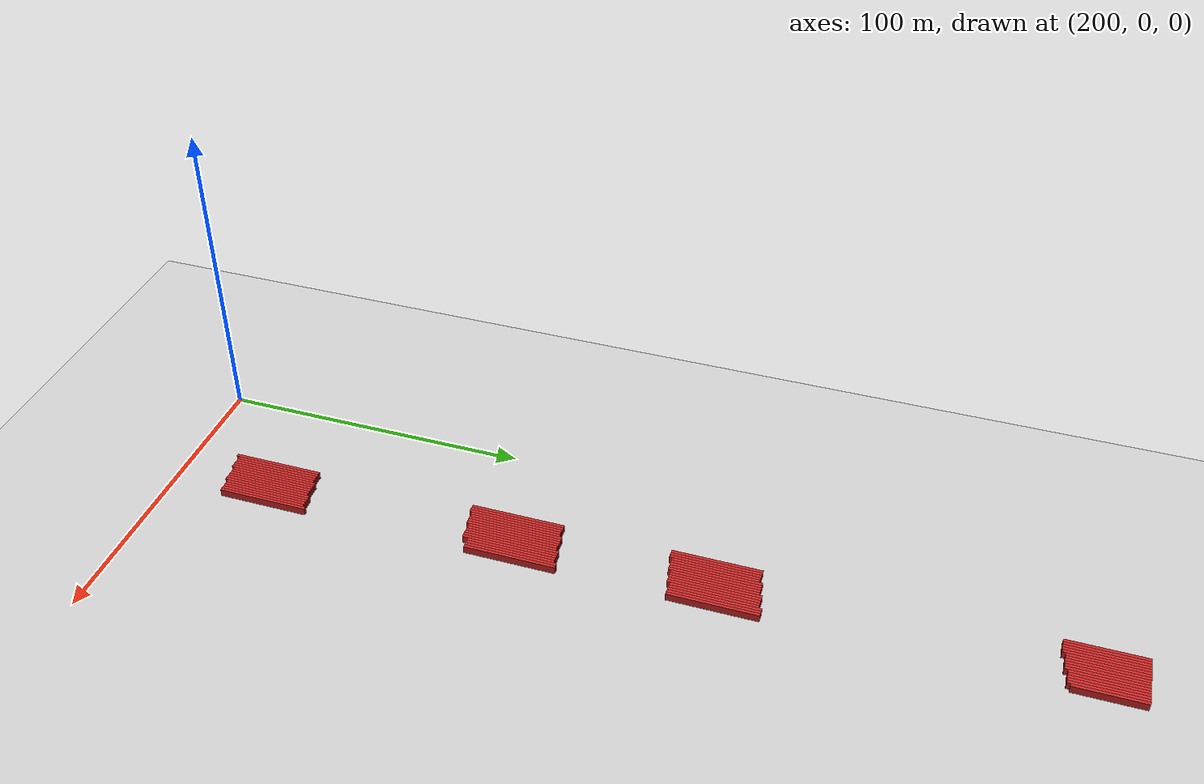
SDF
<sdf version="1.4">
 <world name="1_wall">
  <model name="ground_plane">
   <static>1</static>
   <link name="link">
    <collision name="collision">
     <geometry><plane><normal>0 0 1</normal><size>1000 1000</size></plane></geometry>
     <surface><friction><ode><mu>100</mu><mu2>50</mu2></ode></friction></surface>
    </collision>
    <visual name="visual">
     <cast_shadows>0</cast_shadows>
     <geometry><plane><normal>0 0 1</normal><size>10000 10000</size></plane></geometry>
     <material>
      <script><uri>file://media/materials/scripts/gazebo.material</uri><name>Gazebo/Grey</name></script>
     </material>
    </visual>
    <velocity_decay><linear>0</linear><angular>0</angular></velocity_decay>
   </link>
  </model>
  <model name="Wall_711">
   <static>1</static>
   <link name="Wall_711">
    <collision name="Wall_Collision_711">
     <geometry><box><size>30.0 1.0 2.5</size></box></geometry>
     <pose>0 0 1.25 0 -0 0</pose>
    </collision>
    <visual name="Wall_Visual_711">
     <pose>0 0 1.25 0 -0 0</pose>
     <geometry><box><size>30.0 1.0 2.5</size></box></geometry>
     <material>
      <script><uri>file://media/materials/scripts/gazebo.material</uri><name>Gazebo/Red</name></script>
     </material>
    </visual>
    <velocity_decay><linear>0</linear><angular>0</angular></velocity_decay>
    <pose>227.5 111.0 0 0 0 1.5707963267948966</pose>
   </link>
  </model>
  <model name="Wall_712">
   <static>1</static>
   <link name="Wall_712">
    <collision name="Wall_Collision_712">
     <geometry><box><size>28.0 1.0 2.5</size></box></geometry>
     <pose>0 0 1.25 0 -0 0</pose>
    </collision>
    <visual name="Wall_Visual_712">
     <pose>0 0 1.25 0 -0 0</pose>
     <geometry><box><size>28.0 1.0 2.5</size></box></geometry>
     <material>
      <script><uri>file://media/materials/scripts/gazebo.material</uri><name>Gazebo/Red</name></script>
     </material>
    </visual>
    <velocity_decay><linear>0</linear><angular>0</angular></velocity_decay>
    <pose>227.5 174.0 0 0 0 1.5707963267948966</pose>
   </link>
  </model>
  <model name="Wall_713">
   <static>1</static>
   <link name="Wall_713">
    <collision name="Wall_Collision_713">
     <geometry><box><size>24.0 1.0 2.5</size></box></geometry>
     <pose>0 0 1.25 0 -0 0</pose>
    </collision>
    <visual name="Wall_Visual_713">
     <pose>0 0 1.25 0 -0 0</pose>
     <geometry><box><size>24.0 1.0 2.5</size></box></geometry>
     <material>
      <script><uri>file://media/materials/scripts/gazebo.material</uri><name>Gazebo/Red</name></script>
     </material>
    </visual>
    <velocity_decay><linear>0</linear><angular>0</angular></velocity_decay>
    <pose>227.5 286.0 0 0 0 1.5707963267948966</pose>
   </link>
  </model>
  <model name="Wall_714">
   <static>1</static>
   <link name="Wall_714">
    <collision name="Wall_Collision_714">
     <geometry><box><size>29.0 1.0 2.5</size></box></geometry>
     <pose>0 0 1.25 0 -0 0</pose>
    </collision>
    <visual name="Wall_Visual_714">
     <pose>0 0 1.25 0 -0 0</pose>
     <geometry><box><size>29.0 1.0 2.5</size></box></geometry>
     <material>
      <script><uri>file://media/materials/scripts/gazebo.material</uri><name>Gazebo/Red</name></script>
     </material>
    </visual>
    <velocity_decay><linear>0</linear><angular>0</angular></velocity_decay>
    <pose>228.5 29.5 0 0 0 1.5707963267948966</pose>
   </link>
  </model>
  <model name="Wall_715">
   <static>1</static>
   <link name="Wall_715">
    <collision name="Wall_Collision_715">
     <geometry><box><size>30.0 1.0 2.5</size></box></geometry>
     <pose>0 0 1.25 0 -0 0</pose>
    </collision>
    <visual name="Wall_Visual_715">
     <pose>0 0 1.25 0 -0 0</pose>
     <geometry><box><size>30.0 1.0 2.5</size></box></geometry>
     <material>
      <script><uri>file://media/materials/scripts/gazebo.material</uri><name>Gazebo/Red</name></script>
     </material>
    </visual>
    <velocity_decay><linear>0</linear><angular>0</angular></velocity_decay>
    <pose>228.5 111.0 0 0 0 1.5707963267948966</pose>
   </link>
  </model>
  <model name="Wall_716">
   <static>1</static>
   <link name="Wall_716">
    <collision name="Wall_Collision_716">
     <geometry><box><size>28.0 1.0 2.5</size></box></geometry>
     <pose>0 0 1.25 0 -0 0</pose>
    </collision>
    <visual name="Wall_Visual_716">
     <pose>0 0 1.25 0 -0 0</pose>
     <geometry><box><size>28.0 1.0 2.5</size></box></geometry>
     <material>
      <script><uri>file://media/materials/scripts/gazebo.material</uri><name>Gazebo/Red</name></script>
     </material>
    </visual>
    <velocity_decay><linear>0</linear><angular>0</angular></velocity_decay>
    <pose>228.5 174.0 0 0 0 1.5707963267948966</pose>
   </link>
  </model>
  <model name="Wall_717">
   <static>1</static>
   <link name="Wall_717">
    <collision name="Wall_Collision_717">
     <geometry><box><size>24.0 1.0 2.5</size></box></geometry>
     <pose>0 0 1.25 0 -0 0</pose>
    </collision>
    <visual name="Wall_Visual_717">
     <pose>0 0 1.25 0 -0 0</pose>
     <geometry><box><size>24.0 1.0 2.5</size></box></geometry>
     <material>
      <script><uri>file://media/materials/scripts/gazebo.material</uri><name>Gazebo/Red</name></script>
     </material>
    </visual>
    <velocity_decay><linear>0</linear><angular>0</angular></velocity_decay>
    <pose>228.5 286.0 0 0 0 1.5707963267948966</pose>
   </link>
  </model>
  <model name="Wall_718">
   <static>1</static>
   <link name="Wall_718">
    <collision name="Wall_Collision_718">
     <geometry><box><size>28.0 1.0 2.5</size></box></geometry>
     <pose>0 0 1.25 0 -0 0</pose>
    </collision>
    <visual name="Wall_Visual_718">
     <pose>0 0 1.25 0 -0 0</pose>
     <geometry><box><size>28.0 1.0 2.5</size></box></geometry>
     <material>
      <script><uri>file://media/materials/scripts/gazebo.material</uri><name>Gazebo/Red</name></script>
     </material>
    </visual>
    <velocity_decay><linear>0</linear><angular>0</angular></velocity_decay>
    <pose>229.5 30.0 0 0 0 1.5707963267948966</pose>
   </link>
  </model>
  <model name="Wall_719">
   <static>1</static>
   <link name="Wall_719">
    <collision name="Wall_Collision_719">
     <geometry><box><size>30.0 1.0 2.5</size></box></geometry>
     <pose>0 0 1.25 0 -0 0</pose>
    </collision>
    <visual name="Wall_Visual_719">
     <pose>0 0 1.25 0 -0 0</pose>
     <geometry><box><size>30.0 1.0 2.5</size></box></geometry>
     <material>
      <script><uri>file://media/materials/scripts/gazebo.material</uri><name>Gazebo/Red</name></script>
     </material>
    </visual>
    <velocity_decay><linear>0</linear><angular>0</angular></velocity_decay>
    <pose>229.5 111.0 0 0 0 1.5707963267948966</pose>
   </link>
  </model>
  <model name="Wall_720">
   <static>1</static>
   <link name="Wall_720">
    <collision name="Wall_Collision_720">
     <geometry><box><size>28.0 1.0 2.5</size></box></geometry>
     <pose>0 0 1.25 0 -0 0</pose>
    </collision>
    <visual name="Wall_Visual_720">
     <pose>0 0 1.25 0 -0 0</pose>
     <geometry><box><size>28.0 1.0 2.5</size></box></geometry>
     <material>
      <script><uri>file://media/materials/scripts/gazebo.material</uri><name>Gazebo/Red</name></script>
     </material>
    </visual>
    <velocity_decay><linear>0</linear><angular>0</angular></velocity_decay>
    <pose>229.5 174.0 0 0 0 1.5707963267948966</pose>
   </link>
  </model>
  <model name="Wall_721">
   <static>1</static>
   <link name="Wall_721">
    <collision name="Wall_Collision_721">
     <geometry><box><size>24.0 1.0 2.5</size></box></geometry>
     <pose>0 0 1.25 0 -0 0</pose>
    </collision>
    <visual name="Wall_Visual_721">
     <pose>0 0 1.25 0 -0 0</pose>
     <geometry><box><size>24.0 1.0 2.5</size></box></geometry>
     <material>
      <script><uri>file://media/materials/scripts/gazebo.material</uri><name>Gazebo/Red</name></script>
     </material>
    </visual>
    <velocity_decay><linear>0</linear><angular>0</angular></velocity_decay>
    <pose>229.5 286.0 0 0 0 1.5707963267948966</pose>
   </link>
  </model>
  <model name="Wall_722">
   <static>1</static>
   <link name="Wall_722">
    <collision name="Wall_Collision_722">
     <geometry><box><size>28.0 1.0 2.5</size></box></geometry>
     <pose>0 0 1.25 0 -0 0</pose>
    </collision>
    <visual name="Wall_Visual_722">
     <pose>0 0 1.25 0 -0 0</pose>
     <geometry><box><size>28.0 1.0 2.5</size></box></geometry>
     <material>
      <script><uri>file://media/materials/scripts/gazebo.material</uri><name>Gazebo/Red</name></script>
     </material>
    </visual>
    <velocity_decay><linear>0</linear><angular>0</angular></velocity_decay>
    <pose>230.5 30.0 0 0 0 1.5707963267948966</pose>
   </link>
  </model>
  <model name="Wall_723">
   <static>1</static>
   <link name="Wall_723">
    <collision name="Wall_Collision_723">
     <geometry><box><size>29.0 1.0 2.5</size></box></geometry>
     <pose>0 0 1.25 0 -0 0</pose>
    </collision>
    <visual name="Wall_Visual_723">
     <pose>0 0 1.25 0 -0 0</pose>
     <geometry><box><size>29.0 1.0 2.5</size></box></geometry>
     <material>
      <script><uri>file://media/materials/scripts/gazebo.material</uri><name>Gazebo/Red</name></script>
     </material>
    </visual>
    <velocity_decay><linear>0</linear><angular>0</angular></velocity_decay>
    <pose>230.5 111.5 0 0 0 1.5707963267948966</pose>
   </link>
  </model>
  <model name="Wall_724">
   <static>1</static>
   <link name="Wall_724">
    <collision name="Wall_Collision_724">
     <geometry><box><size>27.0 1.0 2.5</size></box></geometry>
     <pose>0 0 1.25 0 -0 0</pose>
    </collision>
    <visual name="Wall_Visual_724">
     <pose>0 0 1.25 0 -0 0</pose>
     <geometry><box><size>27.0 1.0 2.5</size></box></geometry>
     <material>
      <script><uri>file://media/materials/scripts/gazebo.material</uri><name>Gazebo/Red</name></script>
     </material>
    </visual>
    <velocity_decay><linear>0</linear><angular>0</angular></velocity_decay>
    <pose>230.5 174.5 0 0 0 1.5707963267948966</pose>
   </link>
  </model>
  <model name="Wall_725">
   <static>1</static>
   <link name="Wall_725">
    <collision name="Wall_Collision_725">
     <geometry><box><size>24.0 1.0 2.5</size></box></geometry>
     <pose>0 0 1.25 0 -0 0</pose>
    </collision>
    <visual name="Wall_Visual_725">
     <pose>0 0 1.25 0 -0 0</pose>
     <geometry><box><size>24.0 1.0 2.5</size></box></geometry>
     <material>
      <script><uri>file://media/materials/scripts/gazebo.material</uri><name>Gazebo/Red</name></script>
     </material>
    </visual>
    <velocity_decay><linear>0</linear><angular>0</angular></velocity_decay>
    <pose>230.5 286.0 0 0 0 1.5707963267948966</pose>
   </link>
  </model>
  <model name="Wall_726">
   <static>1</static>
   <link name="Wall_726">
    <collision name="Wall_Collision_726">
     <geometry><box><size>28.0 1.0 2.5</size></box></geometry>
     <pose>0 0 1.25 0 -0 0</pose>
    </collision>
    <visual name="Wall_Visual_726">
     <pose>0 0 1.25 0 -0 0</pose>
     <geometry><box><size>28.0 1.0 2.5</size></box></geometry>
     <material>
      <script><uri>file://media/materials/scripts/gazebo.material</uri><name>Gazebo/Red</name></script>
     </material>
    </visual>
    <velocity_decay><linear>0</linear><angular>0</angular></velocity_decay>
    <pose>231.5 30.0 0 0 0 1.5707963267948966</pose>
   </link>
  </model>
  <model name="Wall_727">
   <static>1</static>
   <link name="Wall_727">
    <collision name="Wall_Collision_727">
     <geometry><box><size>29.0 1.0 2.5</size></box></geometry>
     <pose>0 0 1.25 0 -0 0</pose>
    </collision>
    <visual name="Wall_Visual_727">
     <pose>0 0 1.25 0 -0 0</pose>
     <geometry><box><size>29.0 1.0 2.5</size></box></geometry>
     <material>
      <script><uri>file://media/materials/scripts/gazebo.material</uri><name>Gazebo/Red</name></script>
     </material>
    </visual>
    <velocity_decay><linear>0</linear><angular>0</angular></velocity_decay>
    <pose>231.5 111.5 0 0 0 1.5707963267948966</pose>
   </link>
  </model>
  <model name="Wall_728">
   <static>1</static>
   <link name="Wall_728">
    <collision name="Wall_Collision_728">
     <geometry><box><size>27.0 1.0 2.5</size></box></geometry>
     <pose>0 0 1.25 0 -0 0</pose>
    </collision>
    <visual name="Wall_Visual_728">
     <pose>0 0 1.25 0 -0 0</pose>
     <geometry><box><size>27.0 1.0 2.5</size></box></geometry>
     <material>
      <script><uri>file://media/materials/scripts/gazebo.material</uri><name>Gazebo/Red</name></script>
     </material>
    </visual>
    <velocity_decay><linear>0</linear><angular>0</angular></velocity_decay>
    <pose>231.5 174.5 0 0 0 1.5707963267948966</pose>
   </link>
  </model>
  <model name="Wall_729">
   <static>1</static>
   <link name="Wall_729">
    <collision name="Wall_Collision_729">
     <geometry><box><size>24.0 1.0 2.5</size></box></geometry>
     <pose>0 0 1.25 0 -0 0</pose>
    </collision>
    <visual name="Wall_Visual_729">
     <pose>0 0 1.25 0 -0 0</pose>
     <geometry><box><size>24.0 1.0 2.5</size></box></geometry>
     <material>
      <script><uri>file://media/materials/scripts/gazebo.material</uri><name>Gazebo/Red</name></script>
     </material>
    </visual>
    <velocity_decay><linear>0</linear><angular>0</angular></velocity_decay>
    <pose>231.5 286.0 0 0 0 1.5707963267948966</pose>
   </link>
  </model>
  <model name="Wall_730">
   <static>1</static>
   <link name="Wall_730">
    <collision name="Wall_Collision_730">
     <geometry><box><size>28.0 1.0 2.5</size></box></geometry>
     <pose>0 0 1.25 0 -0 0</pose>
    </collision>
    <visual name="Wall_Visual_730">
     <pose>0 0 1.25 0 -0 0</pose>
     <geometry><box><size>28.0 1.0 2.5</size></box></geometry>
     <material>
      <script><uri>file://media/materials/scripts/gazebo.material</uri><name>Gazebo/Red</name></script>
     </material>
    </visual>
    <velocity_decay><linear>0</linear><angular>0</angular></velocity_decay>
    <pose>232.5 30.0 0 0 0 1.5707963267948966</pose>
   </link>
  </model>
  <model name="Wall_731">
   <static>1</static>
   <link name="Wall_731">
    <collision name="Wall_Collision_731">
     <geometry><box><size>30.0 1.0 2.5</size></box></geometry>
     <pose>0 0 1.25 0 -0 0</pose>
    </collision>
    <visual name="Wall_Visual_731">
     <pose>0 0 1.25 0 -0 0</pose>
     <geometry><box><size>30.0 1.0 2.5</size></box></geometry>
     <material>
      <script><uri>file://media/materials/scripts/gazebo.material</uri><name>Gazebo/Red</name></script>
     </material>
    </visual>
    <velocity_decay><linear>0</linear><angular>0</angular></velocity_decay>
    <pose>232.5 112.0 0 0 0 1.5707963267948966</pose>
   </link>
  </model>
  <model name="Wall_732">
   <static>1</static>
   <link name="Wall_732">
    <collision name="Wall_Collision_732">
     <geometry><box><size>28.0 1.0 2.5</size></box></geometry>
     <pose>0 0 1.25 0 -0 0</pose>
    </collision>
    <visual name="Wall_Visual_732">
     <pose>0 0 1.25 0 -0 0</pose>
     <geometry><box><size>28.0 1.0 2.5</size></box></geometry>
     <material>
      <script><uri>file://media/materials/scripts/gazebo.material</uri><name>Gazebo/Red</name></script>
     </material>
    </visual>
    <velocity_decay><linear>0</linear><angular>0</angular></velocity_decay>
    <pose>232.5 175.0 0 0 0 1.5707963267948966</pose>
   </link>
  </model>
  <model name="Wall_733">
   <static>1</static>
   <link name="Wall_733">
    <collision name="Wall_Collision_733">
     <geometry><box><size>23.0 1.0 2.5</size></box></geometry>
     <pose>0 0 1.25 0 -0 0</pose>
    </collision>
    <visual name="Wall_Visual_733">
     <pose>0 0 1.25 0 -0 0</pose>
     <geometry><box><size>23.0 1.0 2.5</size></box></geometry>
     <material>
      <script><uri>file://media/materials/scripts/gazebo.material</uri><name>Gazebo/Red</name></script>
     </material>
    </visual>
    <velocity_decay><linear>0</linear><angular>0</angular></velocity_decay>
    <pose>232.5 286.5 0 0 0 1.5707963267948966</pose>
   </link>
  </model>
  <model name="Wall_734">
   <static>1</static>
   <link name="Wall_734">
    <collision name="Wall_Collision_734">
     <geometry><box><size>29.0 1.0 2.5</size></box></geometry>
     <pose>0 0 1.25 0 -0 0</pose>
    </collision>
    <visual name="Wall_Visual_734">
     <pose>0 0 1.25 0 -0 0</pose>
     <geometry><box><size>29.0 1.0 2.5</size></box></geometry>
     <material>
      <script><uri>file://media/materials/scripts/gazebo.material</uri><name>Gazebo/Red</name></script>
     </material>
    </visual>
    <velocity_decay><linear>0</linear><angular>0</angular></velocity_decay>
    <pose>233.5 30.5 0 0 0 1.5707963267948966</pose>
   </link>
  </model>
  <model name="Wall_735">
   <static>1</static>
   <link name="Wall_735">
    <collision name="Wall_Collision_735">
     <geometry><box><size>30.0 1.0 2.5</size></box></geometry>
     <pose>0 0 1.25 0 -0 0</pose>
    </collision>
    <visual name="Wall_Visual_735">
     <pose>0 0 1.25 0 -0 0</pose>
     <geometry><box><size>30.0 1.0 2.5</size></box></geometry>
     <material>
      <script><uri>file://media/materials/scripts/gazebo.material</uri><name>Gazebo/Red</name></script>
     </material>
    </visual>
    <velocity_decay><linear>0</linear><angular>0</angular></velocity_decay>
    <pose>233.5 112.0 0 0 0 1.5707963267948966</pose>
   </link>
  </model>
  <model name="Wall_736">
   <static>1</static>
   <link name="Wall_736">
    <collision name="Wall_Collision_736">
     <geometry><box><size>28.0 1.0 2.5</size></box></geometry>
     <pose>0 0 1.25 0 -0 0</pose>
    </collision>
    <visual name="Wall_Visual_736">
     <pose>0 0 1.25 0 -0 0</pose>
     <geometry><box><size>28.0 1.0 2.5</size></box></geometry>
     <material>
      <script><uri>file://media/materials/scripts/gazebo.material</uri><name>Gazebo/Red</name></script>
     </material>
    </visual>
    <velocity_decay><linear>0</linear><angular>0</angular></velocity_decay>
    <pose>233.5 175.0 0 0 0 1.5707963267948966</pose>
   </link>
  </model>
  <model name="Wall_737">
   <static>1</static>
   <link name="Wall_737">
    <collision name="Wall_Collision_737">
     <geometry><box><size>23.0 1.0 2.5</size></box></geometry>
     <pose>0 0 1.25 0 -0 0</pose>
    </collision>
    <visual name="Wall_Visual_737">
     <pose>0 0 1.25 0 -0 0</pose>
     <geometry><box><size>23.0 1.0 2.5</size></box></geometry>
     <material>
      <script><uri>file://media/materials/scripts/gazebo.material</uri><name>Gazebo/Red</name></script>
     </material>
    </visual>
    <velocity_decay><linear>0</linear><angular>0</angular></velocity_decay>
    <pose>233.5 286.5 0 0 0 1.5707963267948966</pose>
   </link>
  </model>
  <model name="Wall_738">
   <static>1</static>
   <link name="Wall_738">
    <collision name="Wall_Collision_738">
     <geometry><box><size>28.0 1.0 2.5</size></box></geometry>
     <pose>0 0 1.25 0 -0 0</pose>
    </collision>
    <visual name="Wall_Visual_738">
     <pose>0 0 1.25 0 -0 0</pose>
     <geometry><box><size>28.0 1.0 2.5</size></box></geometry>
     <material>
      <script><uri>file://media/materials/scripts/gazebo.material</uri><name>Gazebo/Red</name></script>
     </material>
    </visual>
    <velocity_decay><linear>0</linear><angular>0</angular></velocity_decay>
    <pose>234.5 31.0 0 0 0 1.5707963267948966</pose>
   </link>
  </model>
  <model name="Wall_739">
   <static>1</static>
   <link name="Wall_739">
    <collision name="Wall_Collision_739">
     <geometry><box><size>30.0 1.0 2.5</size></box></geometry>
     <pose>0 0 1.25 0 -0 0</pose>
    </collision>
    <visual name="Wall_Visual_739">
     <pose>0 0 1.25 0 -0 0</pose>
     <geometry><box><size>30.0 1.0 2.5</size></box></geometry>
     <material>
      <script><uri>file://media/materials/scripts/gazebo.material</uri><name>Gazebo/Red</name></script>
     </material>
    </visual>
    <velocity_decay><linear>0</linear><angular>0</angular></velocity_decay>
    <pose>234.5 112.0 0 0 0 1.5707963267948966</pose>
   </link>
  </model>
  <model name="Wall_740">
   <static>1</static>
   <link name="Wall_740">
    <collision name="Wall_Collision_740">
     <geometry><box><size>28.0 1.0 2.5</size></box></geometry>
     <pose>0 0 1.25 0 -0 0</pose>
    </collision>
    <visual name="Wall_Visual_740">
     <pose>0 0 1.25 0 -0 0</pose>
     <geometry><box><size>28.0 1.0 2.5</size></box></geometry>
     <material>
      <script><uri>file://media/materials/scripts/gazebo.material</uri><name>Gazebo/Red</name></script>
     </material>
    </visual>
    <velocity_decay><linear>0</linear><angular>0</angular></velocity_decay>
    <pose>234.5 175.0 0 0 0 1.5707963267948966</pose>
   </link>
  </model>
  <model name="Wall_741">
   <static>1</static>
   <link name="Wall_741">
    <collision name="Wall_Collision_741">
     <geometry><box><size>23.0 1.0 2.5</size></box></geometry>
     <pose>0 0 1.25 0 -0 0</pose>
    </collision>
    <visual name="Wall_Visual_741">
     <pose>0 0 1.25 0 -0 0</pose>
     <geometry><box><size>23.0 1.0 2.5</size></box></geometry>
     <material>
      <script><uri>file://media/materials/scripts/gazebo.material</uri><name>Gazebo/Red</name></script>
     </material>
    </visual>
    <velocity_decay><linear>0</linear><angular>0</angular></velocity_decay>
    <pose>234.5 286.5 0 0 0 1.5707963267948966</pose>
   </link>
  </model>
  <model name="Wall_742">
   <static>1</static>
   <link name="Wall_742">
    <collision name="Wall_Collision_742">
     <geometry><box><size>28.0 1.0 2.5</size></box></geometry>
     <pose>0 0 1.25 0 -0 0</pose>
    </collision>
    <visual name="Wall_Visual_742">
     <pose>0 0 1.25 0 -0 0</pose>
     <geometry><box><size>28.0 1.0 2.5</size></box></geometry>
     <material>
      <script><uri>file://media/materials/scripts/gazebo.material</uri><name>Gazebo/Red</name></script>
     </material>
    </visual>
    <velocity_decay><linear>0</linear><angular>0</angular></velocity_decay>
    <pose>235.5 31.0 0 0 0 1.5707963267948966</pose>
   </link>
  </model>
  <model name="Wall_743">
   <static>1</static>
   <link name="Wall_743">
    <collision name="Wall_Collision_743">
     <geometry><box><size>29.0 1.0 2.5</size></box></geometry>
     <pose>0 0 1.25 0 -0 0</pose>
    </collision>
    <visual name="Wall_Visual_743">
     <pose>0 0 1.25 0 -0 0</pose>
     <geometry><box><size>29.0 1.0 2.5</size></box></geometry>
     <material>
      <script><uri>file://media/materials/scripts/gazebo.material</uri><name>Gazebo/Red</name></script>
     </material>
    </visual>
    <velocity_decay><linear>0</linear><angular>0</angular></velocity_decay>
    <pose>235.5 112.5 0 0 0 1.5707963267948966</pose>
   </link>
  </model>
  <model name="Wall_744">
   <static>1</static>
   <link name="Wall_744">
    <collision name="Wall_Collision_744">
     <geometry><box><size>27.0 1.0 2.5</size></box></geometry>
     <pose>0 0 1.25 0 -0 0</pose>
    </collision>
    <visual name="Wall_Visual_744">
     <pose>0 0 1.25 0 -0 0</pose>
     <geometry><box><size>27.0 1.0 2.5</size></box></geometry>
     <material>
      <script><uri>file://media/materials/scripts/gazebo.material</uri><name>Gazebo/Red</name></script>
     </material>
    </visual>
    <velocity_decay><linear>0</linear><angular>0</angular></velocity_decay>
    <pose>235.5 175.5 0 0 0 1.5707963267948966</pose>
   </link>
  </model>
  <model name="Wall_745">
   <static>1</static>
   <link name="Wall_745">
    <collision name="Wall_Collision_745">
     <geometry><box><size>23.0 1.0 2.5</size></box></geometry>
     <pose>0 0 1.25 0 -0 0</pose>
    </collision>
    <visual name="Wall_Visual_745">
     <pose>0 0 1.25 0 -0 0</pose>
     <geometry><box><size>23.0 1.0 2.5</size></box></geometry>
     <material>
      <script><uri>file://media/materials/scripts/gazebo.material</uri><name>Gazebo/Red</name></script>
     </material>
    </visual>
    <velocity_decay><linear>0</linear><angular>0</angular></velocity_decay>
    <pose>235.5 286.5 0 0 0 1.5707963267948966</pose>
   </link>
  </model>
  <model name="Wall_746">
   <static>1</static>
   <link name="Wall_746">
    <collision name="Wall_Collision_746">
     <geometry><box><size>28.0 1.0 2.5</size></box></geometry>
     <pose>0 0 1.25 0 -0 0</pose>
    </collision>
    <visual name="Wall_Visual_746">
     <pose>0 0 1.25 0 -0 0</pose>
     <geometry><box><size>28.0 1.0 2.5</size></box></geometry>
     <material>
      <script><uri>file://media/materials/scripts/gazebo.material</uri><name>Gazebo/Red</name></script>
     </material>
    </visual>
    <velocity_decay><linear>0</linear><angular>0</angular></velocity_decay>
    <pose>236.5 31.0 0 0 0 1.5707963267948966</pose>
   </link>
  </model>
  <model name="Wall_747">
   <static>1</static>
   <link name="Wall_747">
    <collision name="Wall_Collision_747">
     <geometry><box><size>29.0 1.0 2.5</size></box></geometry>
     <pose>0 0 1.25 0 -0 0</pose>
    </collision>
    <visual name="Wall_Visual_747">
     <pose>0 0 1.25 0 -0 0</pose>
     <geometry><box><size>29.0 1.0 2.5</size></box></geometry>
     <material>
      <script><uri>file://media/materials/scripts/gazebo.material</uri><name>Gazebo/Red</name></script>
     </material>
    </visual>
    <velocity_decay><linear>0</linear><angular>0</angular></velocity_decay>
    <pose>236.5 112.5 0 0 0 1.5707963267948966</pose>
   </link>
  </model>
  <model name="Wall_748">
   <static>1</static>
   <link name="Wall_748">
    <collision name="Wall_Collision_748">
     <geometry><box><size>27.0 1.0 2.5</size></box></geometry>
     <pose>0 0 1.25 0 -0 0</pose>
    </collision>
    <visual name="Wall_Visual_748">
     <pose>0 0 1.25 0 -0 0</pose>
     <geometry><box><size>27.0 1.0 2.5</size></box></geometry>
     <material>
      <script><uri>file://media/materials/scripts/gazebo.material</uri><name>Gazebo/Red</name></script>
     </material>
    </visual>
    <velocity_decay><linear>0</linear><angular>0</angular></velocity_decay>
    <pose>236.5 175.5 0 0 0 1.5707963267948966</pose>
   </link>
  </model>
  <model name="Wall_749">
   <static>1</static>
   <link name="Wall_749">
    <collision name="Wall_Collision_749">
     <geometry><box><size>23.0 1.0 2.5</size></box></geometry>
     <pose>0 0 1.25 0 -0 0</pose>
    </collision>
    <visual name="Wall_Visual_749">
     <pose>0 0 1.25 0 -0 0</pose>
     <geometry><box><size>23.0 1.0 2.5</size></box></geometry>
     <material>
      <script><uri>file://media/materials/scripts/gazebo.material</uri><name>Gazebo/Red</name></script>
     </material>
    </visual>
    <velocity_decay><linear>0</linear><angular>0</angular></velocity_decay>
    <pose>236.5 286.5 0 0 0 1.5707963267948966</pose>
   </link>
  </model>
  <model name="Wall_750">
   <static>1</static>
   <link name="Wall_750">
    <collision name="Wall_Collision_750">
     <geometry><box><size>28.0 1.0 2.5</size></box></geometry>
     <pose>0 0 1.25 0 -0 0</pose>
    </collision>
    <visual name="Wall_Visual_750">
     <pose>0 0 1.25 0 -0 0</pose>
     <geometry><box><size>28.0 1.0 2.5</size></box></geometry>
     <material>
      <script><uri>file://media/materials/scripts/gazebo.material</uri><name>Gazebo/Red</name></script>
     </material>
    </visual>
    <velocity_decay><linear>0</linear><angular>0</angular></velocity_decay>
    <pose>237.5 31.0 0 0 0 1.5707963267948966</pose>
   </link>
  </model>
  <model name="Wall_751">
   <static>1</static>
   <link name="Wall_751">
    <collision name="Wall_Collision_751">
     <geometry><box><size>29.0 1.0 2.5</size></box></geometry>
     <pose>0 0 1.25 0 -0 0</pose>
    </collision>
    <visual name="Wall_Visual_751">
     <pose>0 0 1.25 0 -0 0</pose>
     <geometry><box><size>29.0 1.0 2.5</size></box></geometry>
     <material>
      <script><uri>file://media/materials/scripts/gazebo.material</uri><name>Gazebo/Red</name></script>
     </material>
    </visual>
    <velocity_decay><linear>0</linear><angular>0</angular></velocity_decay>
    <pose>237.5 112.5 0 0 0 1.5707963267948966</pose>
   </link>
  </model>
  <model name="Wall_752">
   <static>1</static>
   <link name="Wall_752">
    <collision name="Wall_Collision_752">
     <geometry><box><size>28.0 1.0 2.5</size></box></geometry>
     <pose>0 0 1.25 0 -0 0</pose>
    </collision>
    <visual name="Wall_Visual_752">
     <pose>0 0 1.25 0 -0 0</pose>
     <geometry><box><size>28.0 1.0 2.5</size></box></geometry>
     <material>
      <script><uri>file://media/materials/scripts/gazebo.material</uri><name>Gazebo/Red</name></script>
     </material>
    </visual>
    <velocity_decay><linear>0</linear><angular>0</angular></velocity_decay>
    <pose>237.5 176.0 0 0 0 1.5707963267948966</pose>
   </link>
  </model>
  <model name="Wall_753">
   <static>1</static>
   <link name="Wall_753">
    <collision name="Wall_Collision_753">
     <geometry><box><size>23.0 1.0 2.5</size></box></geometry>
     <pose>0 0 1.25 0 -0 0</pose>
    </collision>
    <visual name="Wall_Visual_753">
     <pose>0 0 1.25 0 -0 0</pose>
     <geometry><box><size>23.0 1.0 2.5</size></box></geometry>
     <material>
      <script><uri>file://media/materials/scripts/gazebo.material</uri><name>Gazebo/Red</name></script>
     </material>
    </visual>
    <velocity_decay><linear>0</linear><angular>0</angular></velocity_decay>
    <pose>237.5 286.5 0 0 0 1.5707963267948966</pose>
   </link>
  </model>
  <model name="Wall_754">
   <static>1</static>
   <link name="Wall_754">
    <collision name="Wall_Collision_754">
     <geometry><box><size>28.0 1.0 2.5</size></box></geometry>
     <pose>0 0 1.25 0 -0 0</pose>
    </collision>
    <visual name="Wall_Visual_754">
     <pose>0 0 1.25 0 -0 0</pose>
     <geometry><box><size>28.0 1.0 2.5</size></box></geometry>
     <material>
      <script><uri>file://media/materials/scripts/gazebo.material</uri><name>Gazebo/Red</name></script>
     </material>
    </visual>
    <velocity_decay><linear>0</linear><angular>0</angular></velocity_decay>
    <pose>238.5 31.0 0 0 0 1.5707963267948966</pose>
   </link>
  </model>
  <model name="Wall_755">
   <static>1</static>
   <link name="Wall_755">
    <collision name="Wall_Collision_755">
     <geometry><box><size>30.0 1.0 2.5</size></box></geometry>
     <pose>0 0 1.25 0 -0 0</pose>
    </collision>
    <visual name="Wall_Visual_755">
     <pose>0 0 1.25 0 -0 0</pose>
     <geometry><box><size>30.0 1.0 2.5</size></box></geometry>
     <material>
      <script><uri>file://media/materials/scripts/gazebo.material</uri><name>Gazebo/Red</name></script>
     </material>
    </visual>
    <velocity_decay><linear>0</linear><angular>0</angular></velocity_decay>
    <pose>238.5 113.0 0 0 0 1.5707963267948966</pose>
   </link>
  </model>
  <model name="Wall_756">
   <static>1</static>
   <link name="Wall_756">
    <collision name="Wall_Collision_756">
     <geometry><box><size>28.0 1.0 2.5</size></box></geometry>
     <pose>0 0 1.25 0 -0 0</pose>
    </collision>
    <visual name="Wall_Visual_756">
     <pose>0 0 1.25 0 -0 0</pose>
     <geometry><box><size>28.0 1.0 2.5</size></box></geometry>
     <material>
      <script><uri>file://media/materials/scripts/gazebo.material</uri><name>Gazebo/Red</name></script>
     </material>
    </visual>
    <velocity_decay><linear>0</linear><angular>0</angular></velocity_decay>
    <pose>238.5 176.0 0 0 0 1.5707963267948966</pose>
   </link>
  </model>
  <model name="Wall_757">
   <static>1</static>
   <link name="Wall_757">
    <collision name="Wall_Collision_757">
     <geometry><box><size>22.0 1.0 2.5</size></box></geometry>
     <pose>0 0 1.25 0 -0 0</pose>
    </collision>
    <visual name="Wall_Visual_757">
     <pose>0 0 1.25 0 -0 0</pose>
     <geometry><box><size>22.0 1.0 2.5</size></box></geometry>
     <material>
      <script><uri>file://media/materials/scripts/gazebo.material</uri><name>Gazebo/Red</name></script>
     </material>
    </visual>
    <velocity_decay><linear>0</linear><angular>0</angular></velocity_decay>
    <pose>238.5 287.0 0 0 0 1.5707963267948966</pose>
   </link>
  </model>
  <model name="Wall_758">
   <static>1</static>
   <link name="Wall_758">
    <collision name="Wall_Collision_758">
     <geometry><box><size>29.0 1.0 2.5</size></box></geometry>
     <pose>0 0 1.25 0 -0 0</pose>
    </collision>
    <visual name="Wall_Visual_758">
     <pose>0 0 1.25 0 -0 0</pose>
     <geometry><box><size>29.0 1.0 2.5</size></box></geometry>
     <material>
      <script><uri>file://media/materials/scripts/gazebo.material</uri><name>Gazebo/Red</name></script>
     </material>
    </visual>
    <velocity_decay><linear>0</linear><angular>0</angular></velocity_decay>
    <pose>239.5 31.5 0 0 0 1.5707963267948966</pose>
   </link>
  </model>
  <model name="Wall_759">
   <static>1</static>
   <link name="Wall_759">
    <collision name="Wall_Collision_759">
     <geometry><box><size>30.0 1.0 2.5</size></box></geometry>
     <pose>0 0 1.25 0 -0 0</pose>
    </collision>
    <visual name="Wall_Visual_759">
     <pose>0 0 1.25 0 -0 0</pose>
     <geometry><box><size>30.0 1.0 2.5</size></box></geometry>
     <material>
      <script><uri>file://media/materials/scripts/gazebo.material</uri><name>Gazebo/Red</name></script>
     </material>
    </visual>
    <velocity_decay><linear>0</linear><angular>0</angular></velocity_decay>
    <pose>239.5 113.0 0 0 0 1.5707963267948966</pose>
   </link>
  </model>
  <model name="Wall_760">
   <static>1</static>
   <link name="Wall_760">
    <collision name="Wall_Collision_760">
     <geometry><box><size>28.0 1.0 2.5</size></box></geometry>
     <pose>0 0 1.25 0 -0 0</pose>
    </collision>
    <visual name="Wall_Visual_760">
     <pose>0 0 1.25 0 -0 0</pose>
     <geometry><box><size>28.0 1.0 2.5</size></box></geometry>
     <material>
      <script><uri>file://media/materials/scripts/gazebo.material</uri><name>Gazebo/Red</name></script>
     </material>
    </visual>
    <velocity_decay><linear>0</linear><angular>0</angular></velocity_decay>
    <pose>239.5 176.0 0 0 0 1.5707963267948966</pose>
   </link>
  </model>
  <model name="Wall_761">
   <static>1</static>
   <link name="Wall_761">
    <collision name="Wall_Collision_761">
     <geometry><box><size>22.0 1.0 2.5</size></box></geometry>
     <pose>0 0 1.25 0 -0 0</pose>
    </collision>
    <visual name="Wall_Visual_761">
     <pose>0 0 1.25 0 -0 0</pose>
     <geometry><box><size>22.0 1.0 2.5</size></box></geometry>
     <material>
      <script><uri>file://media/materials/scripts/gazebo.material</uri><name>Gazebo/Red</name></script>
     </material>
    </visual>
    <velocity_decay><linear>0</linear><angular>0</angular></velocity_decay>
    <pose>239.5 287.0 0 0 0 1.5707963267948966</pose>
   </link>
  </model>
  <model name="Wall_762">
   <static>1</static>
   <link name="Wall_762">
    <collision name="Wall_Collision_762">
     <geometry><box><size>28.0 1.0 2.5</size></box></geometry>
     <pose>0 0 1.25 0 -0 0</pose>
    </collision>
    <visual name="Wall_Visual_762">
     <pose>0 0 1.25 0 -0 0</pose>
     <geometry><box><size>28.0 1.0 2.5</size></box></geometry>
     <material>
      <script><uri>file://media/materials/scripts/gazebo.material</uri><name>Gazebo/Red</name></script>
     </material>
    </visual>
    <velocity_decay><linear>0</linear><angular>0</angular></velocity_decay>
    <pose>240.5 32.0 0 0 0 1.5707963267948966</pose>
   </link>
  </model>
  <model name="Wall_763">
   <static>1</static>
   <link name="Wall_763">
    <collision name="Wall_Collision_763">
     <geometry><box><size>30.0 1.0 2.5</size></box></geometry>
     <pose>0 0 1.25 0 -0 0</pose>
    </collision>
    <visual name="Wall_Visual_763">
     <pose>0 0 1.25 0 -0 0</pose>
     <geometry><box><size>30.0 1.0 2.5</size></box></geometry>
     <material>
      <script><uri>file://media/materials/scripts/gazebo.material</uri><name>Gazebo/Red</name></script>
     </material>
    </visual>
    <velocity_decay><linear>0</linear><angular>0</angular></velocity_decay>
    <pose>240.5 113.0 0 0 0 1.5707963267948966</pose>
   </link>
  </model>
  <model name="Wall_764">
   <static>1</static>
   <link name="Wall_764">
    <collision name="Wall_Collision_764">
     <geometry><box><size>27.0 1.0 2.5</size></box></geometry>
     <pose>0 0 1.25 0 -0 0</pose>
    </collision>
    <visual name="Wall_Visual_764">
     <pose>0 0 1.25 0 -0 0</pose>
     <geometry><box><size>27.0 1.0 2.5</size></box></geometry>
     <material>
      <script><uri>file://media/materials/scripts/gazebo.material</uri><name>Gazebo/Red</name></script>
     </material>
    </visual>
    <velocity_decay><linear>0</linear><angular>0</angular></velocity_decay>
    <pose>240.5 176.5 0 0 0 1.5707963267948966</pose>
   </link>
  </model>
  <model name="Wall_765">
   <static>1</static>
   <link name="Wall_765">
    <collision name="Wall_Collision_765">
     <geometry><box><size>22.0 1.0 2.5</size></box></geometry>
     <pose>0 0 1.25 0 -0 0</pose>
    </collision>
    <visual name="Wall_Visual_765">
     <pose>0 0 1.25 0 -0 0</pose>
     <geometry><box><size>22.0 1.0 2.5</size></box></geometry>
     <material>
      <script><uri>file://media/materials/scripts/gazebo.material</uri><name>Gazebo/Red</name></script>
     </material>
    </visual>
    <velocity_decay><linear>0</linear><angular>0</angular></velocity_decay>
    <pose>240.5 287.0 0 0 0 1.5707963267948966</pose>
   </link>
  </model>
  <model name="Wall_766">
   <static>1</static>
   <link name="Wall_766">
    <collision name="Wall_Collision_766">
     <geometry><box><size>28.0 1.0 2.5</size></box></geometry>
     <pose>0 0 1.25 0 -0 0</pose>
    </collision>
    <visual name="Wall_Visual_766">
     <pose>0 0 1.25 0 -0 0</pose>
     <geometry><box><size>28.0 1.0 2.5</size></box></geometry>
     <material>
      <script><uri>file://media/materials/scripts/gazebo.material</uri><name>Gazebo/Red</name></script>
     </material>
    </visual>
    <velocity_decay><linear>0</linear><angular>0</angular></velocity_decay>
    <pose>241.5 32.0 0 0 0 1.5707963267948966</pose>
   </link>
  </model>
  <model name="Wall_767">
   <static>1</static>
   <link name="Wall_767">
    <collision name="Wall_Collision_767">
     <geometry><box><size>28.0 1.0 2.5</size></box></geometry>
     <pose>0 0 1.25 0 -0 0</pose>
    </collision>
    <visual name="Wall_Visual_767">
     <pose>0 0 1.25 0 -0 0</pose>
     <geometry><box><size>28.0 1.0 2.5</size></box></geometry>
     <material>
      <script><uri>file://media/materials/scripts/gazebo.material</uri><name>Gazebo/Red</name></script>
     </material>
    </visual>
    <velocity_decay><linear>0</linear><angular>0</angular></velocity_decay>
    <pose>241.5 114.0 0 0 0 1.5707963267948966</pose>
   </link>
  </model>
  <model name="Wall_768">
   <static>1</static>
   <link name="Wall_768">
    <collision name="Wall_Collision_768">
     <geometry><box><size>27.0 1.0 2.5</size></box></geometry>
     <pose>0 0 1.25 0 -0 0</pose>
    </collision>
    <visual name="Wall_Visual_768">
     <pose>0 0 1.25 0 -0 0</pose>
     <geometry><box><size>27.0 1.0 2.5</size></box></geometry>
     <material>
      <script><uri>file://media/materials/scripts/gazebo.material</uri><name>Gazebo/Red</name></script>
     </material>
    </visual>
    <velocity_decay><linear>0</linear><angular>0</angular></velocity_decay>
    <pose>241.5 176.5 0 0 0 1.5707963267948966</pose>
   </link>
  </model>
  <model name="Wall_769">
   <static>1</static>
   <link name="Wall_769">
    <collision name="Wall_Collision_769">
     <geometry><box><size>22.0 1.0 2.5</size></box></geometry>
     <pose>0 0 1.25 0 -0 0</pose>
    </collision>
    <visual name="Wall_Visual_769">
     <pose>0 0 1.25 0 -0 0</pose>
     <geometry><box><size>22.0 1.0 2.5</size></box></geometry>
     <material>
      <script><uri>file://media/materials/scripts/gazebo.material</uri><name>Gazebo/Red</name></script>
     </material>
    </visual>
    <velocity_decay><linear>0</linear><angular>0</angular></velocity_decay>
    <pose>241.5 287.0 0 0 0 1.5707963267948966</pose>
   </link>
  </model>
  <model name="Wall_770">
   <static>1</static>
   <link name="Wall_770">
    <collision name="Wall_Collision_770">
     <geometry><box><size>28.0 1.0 2.5</size></box></geometry>
     <pose>0 0 1.25 0 -0 0</pose>
    </collision>
    <visual name="Wall_Visual_770">
     <pose>0 0 1.25 0 -0 0</pose>
     <geometry><box><size>28.0 1.0 2.5</size></box></geometry>
     <material>
      <script><uri>file://media/materials/scripts/gazebo.material</uri><name>Gazebo/Red</name></script>
     </material>
    </visual>
    <velocity_decay><linear>0</linear><angular>0</angular></velocity_decay>
    <pose>242.5 32.0 0 0 0 1.5707963267948966</pose>
   </link>
  </model>
  <model name="Wall_771">
   <static>1</static>
   <link name="Wall_771">
    <collision name="Wall_Collision_771">
     <geometry><box><size>28.0 1.0 2.5</size></box></geometry>
     <pose>0 0 1.25 0 -0 0</pose>
    </collision>
    <visual name="Wall_Visual_771">
     <pose>0 0 1.25 0 -0 0</pose>
     <geometry><box><size>28.0 1.0 2.5</size></box></geometry>
     <material>
      <script><uri>file://media/materials/scripts/gazebo.material</uri><name>Gazebo/Red</name></script>
     </material>
    </visual>
    <velocity_decay><linear>0</linear><angular>0</angular></velocity_decay>
    <pose>242.5 114.0 0 0 0 1.5707963267948966</pose>
   </link>
  </model>
  <model name="Wall_772">
   <static>1</static>
   <link name="Wall_772">
    <collision name="Wall_Collision_772">
     <geometry><box><size>28.0 1.0 2.5</size></box></geometry>
     <pose>0 0 1.25 0 -0 0</pose>
    </collision>
    <visual name="Wall_Visual_772">
     <pose>0 0 1.25 0 -0 0</pose>
     <geometry><box><size>28.0 1.0 2.5</size></box></geometry>
     <material>
      <script><uri>file://media/materials/scripts/gazebo.material</uri><name>Gazebo/Red</name></script>
     </material>
    </visual>
    <velocity_decay><linear>0</linear><angular>0</angular></velocity_decay>
    <pose>242.5 177.0 0 0 0 1.5707963267948966</pose>
   </link>
  </model>
  <model name="Wall_773">
   <static>1</static>
   <link name="Wall_773">
    <collision name="Wall_Collision_773">
     <geometry><box><size>22.0 1.0 2.5</size></box></geometry>
     <pose>0 0 1.25 0 -0 0</pose>
    </collision>
    <visual name="Wall_Visual_773">
     <pose>0 0 1.25 0 -0 0</pose>
     <geometry><box><size>22.0 1.0 2.5</size></box></geometry>
     <material>
      <script><uri>file://media/materials/scripts/gazebo.material</uri><name>Gazebo/Red</name></script>
     </material>
    </visual>
    <velocity_decay><linear>0</linear><angular>0</angular></velocity_decay>
    <pose>242.5 287.0 0 0 0 1.5707963267948966</pose>
   </link>
  </model>
  <model name="Wall_774">
   <static>1</static>
   <link name="Wall_774">
    <collision name="Wall_Collision_774">
     <geometry><box><size>28.0 1.0 2.5</size></box></geometry>
     <pose>0 0 1.25 0 -0 0</pose>
    </collision>
    <visual name="Wall_Visual_774">
     <pose>0 0 1.25 0 -0 0</pose>
     <geometry><box><size>28.0 1.0 2.5</size></box></geometry>
     <material>
      <script><uri>file://media/materials/scripts/gazebo.material</uri><name>Gazebo/Red</name></script>
     </material>
    </visual>
    <velocity_decay><linear>0</linear><angular>0</angular></velocity_decay>
    <pose>243.5 32.0 0 0 0 1.5707963267948966</pose>
   </link>
  </model>
  <model name="Wall_775">
   <static>1</static>
   <link name="Wall_775">
    <collision name="Wall_Collision_775">
     <geometry><box><size>29.0 1.0 2.5</size></box></geometry>
     <pose>0 0 1.25 0 -0 0</pose>
    </collision>
    <visual name="Wall_Visual_775">
     <pose>0 0 1.25 0 -0 0</pose>
     <geometry><box><size>29.0 1.0 2.5</size></box></geometry>
     <material>
      <script><uri>file://media/materials/scripts/gazebo.material</uri><name>Gazebo/Red</name></script>
     </material>
    </visual>
    <velocity_decay><linear>0</linear><angular>0</angular></velocity_decay>
    <pose>243.5 114.5 0 0 0 1.5707963267948966</pose>
   </link>
  </model>
  <model name="Wall_776">
   <static>1</static>
   <link name="Wall_776">
    <collision name="Wall_Collision_776">
     <geometry><box><size>28.0 1.0 2.5</size></box></geometry>
     <pose>0 0 1.25 0 -0 0</pose>
    </collision>
    <visual name="Wall_Visual_776">
     <pose>0 0 1.25 0 -0 0</pose>
     <geometry><box><size>28.0 1.0 2.5</size></box></geometry>
     <material>
      <script><uri>file://media/materials/scripts/gazebo.material</uri><name>Gazebo/Red</name></script>
     </material>
    </visual>
    <velocity_decay><linear>0</linear><angular>0</angular></velocity_decay>
    <pose>243.5 177.0 0 0 0 1.5707963267948966</pose>
   </link>
  </model>
  <model name="Wall_777">
   <static>1</static>
   <link name="Wall_777">
    <collision name="Wall_Collision_777">
     <geometry><box><size>21.0 1.0 2.5</size></box></geometry>
     <pose>0 0 1.25 0 -0 0</pose>
    </collision>
    <visual name="Wall_Visual_777">
     <pose>0 0 1.25 0 -0 0</pose>
     <geometry><box><size>21.0 1.0 2.5</size></box></geometry>
     <material>
      <script><uri>file://media/materials/scripts/gazebo.material</uri><name>Gazebo/Red</name></script>
     </material>
    </visual>
    <velocity_decay><linear>0</linear><angular>0</angular></velocity_decay>
    <pose>243.5 287.5 0 0 0 1.5707963267948966</pose>
   </link>
  </model>
  <model name="Wall_778">
   <static>1</static>
   <link name="Wall_778">
    <collision name="Wall_Collision_778">
     <geometry><box><size>29.0 1.0 2.5</size></box></geometry>
     <pose>0 0 1.25 0 -0 0</pose>
    </collision>
    <visual name="Wall_Visual_778">
     <pose>0 0 1.25 0 -0 0</pose>
     <geometry><box><size>29.0 1.0 2.5</size></box></geometry>
     <material>
      <script><uri>file://media/materials/scripts/gazebo.material</uri><name>Gazebo/Red</name></script>
     </material>
    </visual>
    <velocity_decay><linear>0</linear><angular>0</angular></velocity_decay>
    <pose>244.5 32.5 0 0 0 1.5707963267948966</pose>
   </link>
  </model>
  <model name="Wall_779">
   <static>1</static>
   <link name="Wall_779">
    <collision name="Wall_Collision_779">
     <geometry><box><size>29.0 1.0 2.5</size></box></geometry>
     <pose>0 0 1.25 0 -0 0</pose>
    </collision>
    <visual name="Wall_Visual_779">
     <pose>0 0 1.25 0 -0 0</pose>
     <geometry><box><size>29.0 1.0 2.5</size></box></geometry>
     <material>
      <script><uri>file://media/materials/scripts/gazebo.material</uri><name>Gazebo/Red</name></script>
     </material>
    </visual>
    <velocity_decay><linear>0</linear><angular>0</angular></velocity_decay>
    <pose>244.5 114.5 0 0 0 1.5707963267948966</pose>
   </link>
  </model>
  <model name="Wall_780">
   <static>1</static>
   <link name="Wall_780">
    <collision name="Wall_Collision_780">
     <geometry><box><size>28.0 1.0 2.5</size></box></geometry>
     <pose>0 0 1.25 0 -0 0</pose>
    </collision>
    <visual name="Wall_Visual_780">
     <pose>0 0 1.25 0 -0 0</pose>
     <geometry><box><size>28.0 1.0 2.5</size></box></geometry>
     <material>
      <script><uri>file://media/materials/scripts/gazebo.material</uri><name>Gazebo/Red</name></script>
     </material>
    </visual>
    <velocity_decay><linear>0</linear><angular>0</angular></velocity_decay>
    <pose>244.5 177.0 0 0 0 1.5707963267948966</pose>
   </link>
  </model>
 </world>
</sdf>
